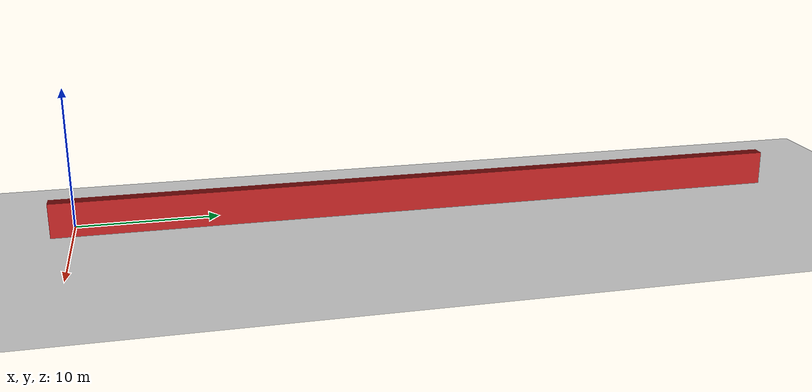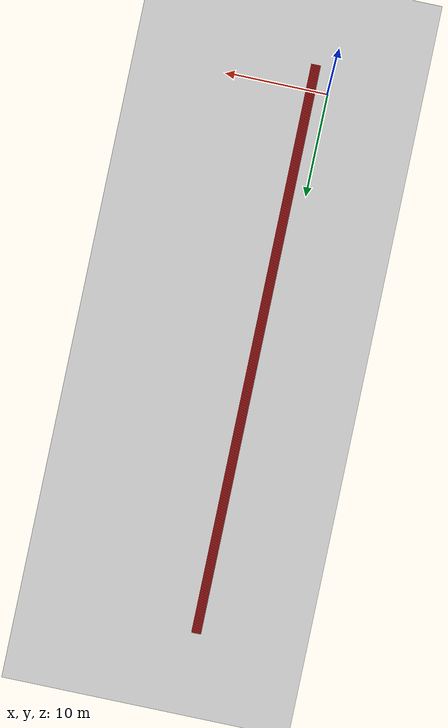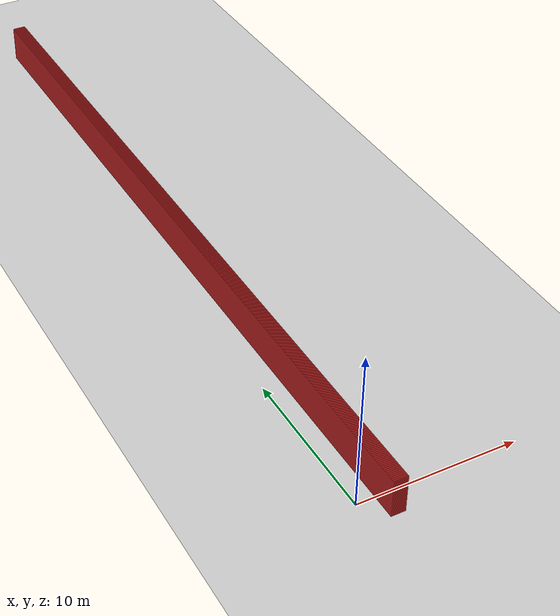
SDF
<sdf version="1.4">
 <world name="1_wall">
  <model name="ground_plane">
   <static>1</static>
   <link name="link">
    <collision name="collision">
     <geometry><plane><normal>0 0 1</normal><size>1000 1000</size></plane></geometry>
     <surface><friction><ode><mu>100</mu><mu2>50</mu2></ode></friction></surface>
    </collision>
    <visual name="visual">
     <cast_shadows>0</cast_shadows>
     <geometry><plane><normal>0 0 1</normal><size>10000 10000</size></plane></geometry>
     <material>
      <script><uri>file://media/materials/scripts/gazebo.material</uri><name>Gazebo/Grey</name></script>
     </material>
    </visual>
    <velocity_decay><linear>0</linear><angular>0</angular></velocity_decay>
   </link>
  </model>
  <model name="Wall_54">
   <static>1</static>
   <link name="Wall_54">
    <collision name="Wall_Collision_54">
     <geometry><box><size>53.65 0.05 2.5</size></box></geometry>
     <pose>0 0 1.25 0 -0 0</pose>
    </collision>
    <visual name="Wall_Visual_54">
     <pose>0 0 1.25 0 -0 0</pose>
     <geometry><box><size>53.65 0.05 2.5</size></box></geometry>
     <material>
      <script><uri>file://media/materials/scripts/gazebo.material</uri><name>Gazebo/Red</name></script>
     </material>
    </visual>
    <velocity_decay><linear>0</linear><angular>0</angular></velocity_decay>
    <pose>1.2 25.3 0 0 0 1.5707963267948966</pose>
   </link>
  </model>
  <model name="Wall_55">
   <static>1</static>
   <link name="Wall_55">
    <collision name="Wall_Collision_55">
     <geometry><box><size>53.65 0.05 2.5</size></box></geometry>
     <pose>0 0 1.25 0 -0 0</pose>
    </collision>
    <visual name="Wall_Visual_55">
     <pose>0 0 1.25 0 -0 0</pose>
     <geometry><box><size>53.65 0.05 2.5</size></box></geometry>
     <material>
      <script><uri>file://media/materials/scripts/gazebo.material</uri><name>Gazebo/Red</name></script>
     </material>
    </visual>
    <velocity_decay><linear>0</linear><angular>0</angular></velocity_decay>
    <pose>1.25 25.3 0 0 0 1.5707963267948966</pose>
   </link>
  </model>
  <model name="Wall_56">
   <static>1</static>
   <link name="Wall_56">
    <collision name="Wall_Collision_56">
     <geometry><box><size>53.65 0.05 2.5</size></box></geometry>
     <pose>0 0 1.25 0 -0 0</pose>
    </collision>
    <visual name="Wall_Visual_56">
     <pose>0 0 1.25 0 -0 0</pose>
     <geometry><box><size>53.65 0.05 2.5</size></box></geometry>
     <material>
      <script><uri>file://media/materials/scripts/gazebo.material</uri><name>Gazebo/Red</name></script>
     </material>
    </visual>
    <velocity_decay><linear>0</linear><angular>0</angular></velocity_decay>
    <pose>1.3 25.3 0 0 0 1.5707963267948966</pose>
   </link>
  </model>
  <model name="Wall_57">
   <static>1</static>
   <link name="Wall_57">
    <collision name="Wall_Collision_57">
     <geometry><box><size>53.65 0.05 2.5</size></box></geometry>
     <pose>0 0 1.25 0 -0 0</pose>
    </collision>
    <visual name="Wall_Visual_57">
     <pose>0 0 1.25 0 -0 0</pose>
     <geometry><box><size>53.65 0.05 2.5</size></box></geometry>
     <material>
      <script><uri>file://media/materials/scripts/gazebo.material</uri><name>Gazebo/Red</name></script>
     </material>
    </visual>
    <velocity_decay><linear>0</linear><angular>0</angular></velocity_decay>
    <pose>1.35 25.3 0 0 0 1.5707963267948966</pose>
   </link>
  </model>
  <model name="Wall_58">
   <static>1</static>
   <link name="Wall_58">
    <collision name="Wall_Collision_58">
     <geometry><box><size>53.65 0.05 2.5</size></box></geometry>
     <pose>0 0 1.25 0 -0 0</pose>
    </collision>
    <visual name="Wall_Visual_58">
     <pose>0 0 1.25 0 -0 0</pose>
     <geometry><box><size>53.65 0.05 2.5</size></box></geometry>
     <material>
      <script><uri>file://media/materials/scripts/gazebo.material</uri><name>Gazebo/Red</name></script>
     </material>
    </visual>
    <velocity_decay><linear>0</linear><angular>0</angular></velocity_decay>
    <pose>1.4 25.3 0 0 0 1.5707963267948966</pose>
   </link>
  </model>
  <model name="Wall_59">
   <static>1</static>
   <link name="Wall_59">
    <collision name="Wall_Collision_59">
     <geometry><box><size>53.65 0.05 2.5</size></box></geometry>
     <pose>0 0 1.25 0 -0 0</pose>
    </collision>
    <visual name="Wall_Visual_59">
     <pose>0 0 1.25 0 -0 0</pose>
     <geometry><box><size>53.65 0.05 2.5</size></box></geometry>
     <material>
      <script><uri>file://media/materials/scripts/gazebo.material</uri><name>Gazebo/Red</name></script>
     </material>
    </visual>
    <velocity_decay><linear>0</linear><angular>0</angular></velocity_decay>
    <pose>1.45 25.3 0 0 0 1.5707963267948966</pose>
   </link>
  </model>
  <model name="Wall_60">
   <static>1</static>
   <link name="Wall_60">
    <collision name="Wall_Collision_60">
     <geometry><box><size>53.65 0.05 2.5</size></box></geometry>
     <pose>0 0 1.25 0 -0 0</pose>
    </collision>
    <visual name="Wall_Visual_60">
     <pose>0 0 1.25 0 -0 0</pose>
     <geometry><box><size>53.65 0.05 2.5</size></box></geometry>
     <material>
      <script><uri>file://media/materials/scripts/gazebo.material</uri><name>Gazebo/Red</name></script>
     </material>
    </visual>
    <velocity_decay><linear>0</linear><angular>0</angular></velocity_decay>
    <pose>1.5 25.3 0 0 0 1.5707963267948966</pose>
   </link>
  </model>
  <model name="Wall_61">
   <static>1</static>
   <link name="Wall_61">
    <collision name="Wall_Collision_61">
     <geometry><box><size>53.65 0.05 2.5</size></box></geometry>
     <pose>0 0 1.25 0 -0 0</pose>
    </collision>
    <visual name="Wall_Visual_61">
     <pose>0 0 1.25 0 -0 0</pose>
     <geometry><box><size>53.65 0.05 2.5</size></box></geometry>
     <material>
      <script><uri>file://media/materials/scripts/gazebo.material</uri><name>Gazebo/Red</name></script>
     </material>
    </visual>
    <velocity_decay><linear>0</linear><angular>0</angular></velocity_decay>
    <pose>1.55 25.3 0 0 0 1.5707963267948966</pose>
   </link>
  </model>
  <model name="Wall_62">
   <static>1</static>
   <link name="Wall_62">
    <collision name="Wall_Collision_62">
     <geometry><box><size>53.65 0.05 2.5</size></box></geometry>
     <pose>0 0 1.25 0 -0 0</pose>
    </collision>
    <visual name="Wall_Visual_62">
     <pose>0 0 1.25 0 -0 0</pose>
     <geometry><box><size>53.65 0.05 2.5</size></box></geometry>
     <material>
      <script><uri>file://media/materials/scripts/gazebo.material</uri><name>Gazebo/Red</name></script>
     </material>
    </visual>
    <velocity_decay><linear>0</linear><angular>0</angular></velocity_decay>
    <pose>1.6 25.3 0 0 0 1.5707963267948966</pose>
   </link>
  </model>
  <model name="Wall_63">
   <static>1</static>
   <link name="Wall_63">
    <collision name="Wall_Collision_63">
     <geometry><box><size>53.65 0.05 2.5</size></box></geometry>
     <pose>0 0 1.25 0 -0 0</pose>
    </collision>
    <visual name="Wall_Visual_63">
     <pose>0 0 1.25 0 -0 0</pose>
     <geometry><box><size>53.65 0.05 2.5</size></box></geometry>
     <material>
      <script><uri>file://media/materials/scripts/gazebo.material</uri><name>Gazebo/Red</name></script>
     </material>
    </visual>
    <velocity_decay><linear>0</linear><angular>0</angular></velocity_decay>
    <pose>1.65 25.3 0 0 0 1.5707963267948966</pose>
   </link>
  </model>
  <model name="Wall_64">
   <static>1</static>
   <link name="Wall_64">
    <collision name="Wall_Collision_64">
     <geometry><box><size>53.65 0.05 2.5</size></box></geometry>
     <pose>0 0 1.25 0 -0 0</pose>
    </collision>
    <visual name="Wall_Visual_64">
     <pose>0 0 1.25 0 -0 0</pose>
     <geometry><box><size>53.65 0.05 2.5</size></box></geometry>
     <material>
      <script><uri>file://media/materials/scripts/gazebo.material</uri><name>Gazebo/Red</name></script>
     </material>
    </visual>
    <velocity_decay><linear>0</linear><angular>0</angular></velocity_decay>
    <pose>1.7 25.3 0 0 0 1.5707963267948966</pose>
   </link>
  </model>
  <model name="Wall_65">
   <static>1</static>
   <link name="Wall_65">
    <collision name="Wall_Collision_65">
     <geometry><box><size>53.65 0.05 2.5</size></box></geometry>
     <pose>0 0 1.25 0 -0 0</pose>
    </collision>
    <visual name="Wall_Visual_65">
     <pose>0 0 1.25 0 -0 0</pose>
     <geometry><box><size>53.65 0.05 2.5</size></box></geometry>
     <material>
      <script><uri>file://media/materials/scripts/gazebo.material</uri><name>Gazebo/Red</name></script>
     </material>
    </visual>
    <velocity_decay><linear>0</linear><angular>0</angular></velocity_decay>
    <pose>1.75 25.3 0 0 0 1.5707963267948966</pose>
   </link>
  </model>
  <model name="Wall_66">
   <static>1</static>
   <link name="Wall_66">
    <collision name="Wall_Collision_66">
     <geometry><box><size>53.65 0.05 2.5</size></box></geometry>
     <pose>0 0 1.25 0 -0 0</pose>
    </collision>
    <visual name="Wall_Visual_66">
     <pose>0 0 1.25 0 -0 0</pose>
     <geometry><box><size>53.65 0.05 2.5</size></box></geometry>
     <material>
      <script><uri>file://media/materials/scripts/gazebo.material</uri><name>Gazebo/Red</name></script>
     </material>
    </visual>
    <velocity_decay><linear>0</linear><angular>0</angular></velocity_decay>
    <pose>1.8 25.3 0 0 0 1.5707963267948966</pose>
   </link>
  </model>
  <model name="Wall_67">
   <static>1</static>
   <link name="Wall_67">
    <collision name="Wall_Collision_67">
     <geometry><box><size>53.65 0.05 2.5</size></box></geometry>
     <pose>0 0 1.25 0 -0 0</pose>
    </collision>
    <visual name="Wall_Visual_67">
     <pose>0 0 1.25 0 -0 0</pose>
     <geometry><box><size>53.65 0.05 2.5</size></box></geometry>
     <material>
      <script><uri>file://media/materials/scripts/gazebo.material</uri><name>Gazebo/Red</name></script>
     </material>
    </visual>
    <velocity_decay><linear>0</linear><angular>0</angular></velocity_decay>
    <pose>1.85 25.3 0 0 0 1.5707963267948966</pose>
   </link>
  </model>
  <model name="Wall_68">
   <static>1</static>
   <link name="Wall_68">
    <collision name="Wall_Collision_68">
     <geometry><box><size>53.65 0.05 2.5</size></box></geometry>
     <pose>0 0 1.25 0 -0 0</pose>
    </collision>
    <visual name="Wall_Visual_68">
     <pose>0 0 1.25 0 -0 0</pose>
     <geometry><box><size>53.65 0.05 2.5</size></box></geometry>
     <material>
      <script><uri>file://media/materials/scripts/gazebo.material</uri><name>Gazebo/Red</name></script>
     </material>
    </visual>
    <velocity_decay><linear>0</linear><angular>0</angular></velocity_decay>
    <pose>1.9 25.3 0 0 0 1.5707963267948966</pose>
   </link>
  </model>
  <model name="Wall_69">
   <static>1</static>
   <link name="Wall_69">
    <collision name="Wall_Collision_69">
     <geometry><box><size>53.65 0.05 2.5</size></box></geometry>
     <pose>0 0 1.25 0 -0 0</pose>
    </collision>
    <visual name="Wall_Visual_69">
     <pose>0 0 1.25 0 -0 0</pose>
     <geometry><box><size>53.65 0.05 2.5</size></box></geometry>
     <material>
      <script><uri>file://media/materials/scripts/gazebo.material</uri><name>Gazebo/Red</name></script>
     </material>
    </visual>
    <velocity_decay><linear>0</linear><angular>0</angular></velocity_decay>
    <pose>1.95 25.3 0 0 0 1.5707963267948966</pose>
   </link>
  </model>
  <model name="Wall_70">
   <static>1</static>
   <link name="Wall_70">
    <collision name="Wall_Collision_70">
     <geometry><box><size>53.65 0.05 2.5</size></box></geometry>
     <pose>0 0 1.25 0 -0 0</pose>
    </collision>
    <visual name="Wall_Visual_70">
     <pose>0 0 1.25 0 -0 0</pose>
     <geometry><box><size>53.65 0.05 2.5</size></box></geometry>
     <material>
      <script><uri>file://media/materials/scripts/gazebo.material</uri><name>Gazebo/Red</name></script>
     </material>
    </visual>
    <velocity_decay><linear>0</linear><angular>0</angular></velocity_decay>
    <pose>2.0 25.3 0 0 0 1.5707963267948966</pose>
   </link>
  </model>
  <model name="Wall_71">
   <static>1</static>
   <link name="Wall_71">
    <collision name="Wall_Collision_71">
     <geometry><box><size>53.65 0.05 2.5</size></box></geometry>
     <pose>0 0 1.25 0 -0 0</pose>
    </collision>
    <visual name="Wall_Visual_71">
     <pose>0 0 1.25 0 -0 0</pose>
     <geometry><box><size>53.65 0.05 2.5</size></box></geometry>
     <material>
      <script><uri>file://media/materials/scripts/gazebo.material</uri><name>Gazebo/Red</name></script>
     </material>
    </visual>
    <velocity_decay><linear>0</linear><angular>0</angular></velocity_decay>
    <pose>2.05 25.3 0 0 0 1.5707963267948966</pose>
   </link>
  </model>
 </world>
</sdf>
